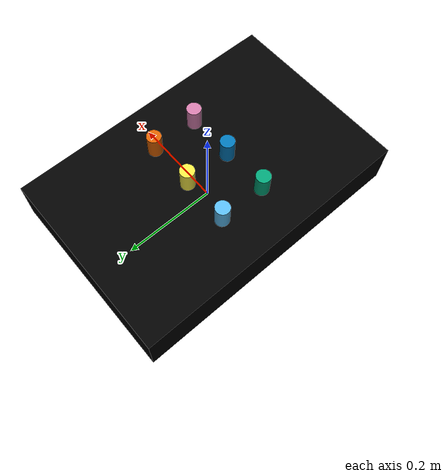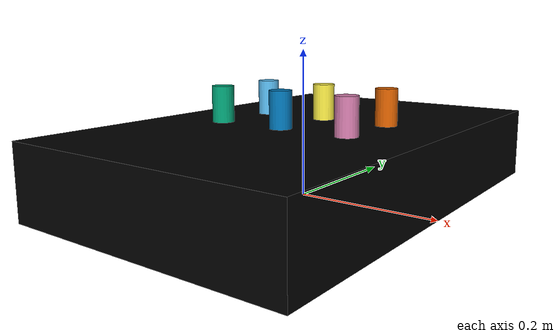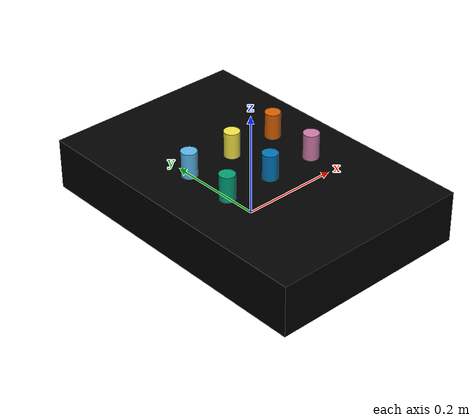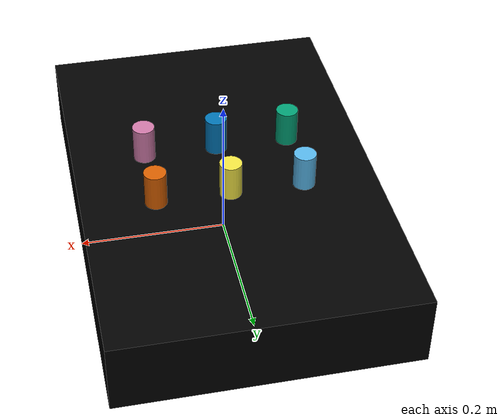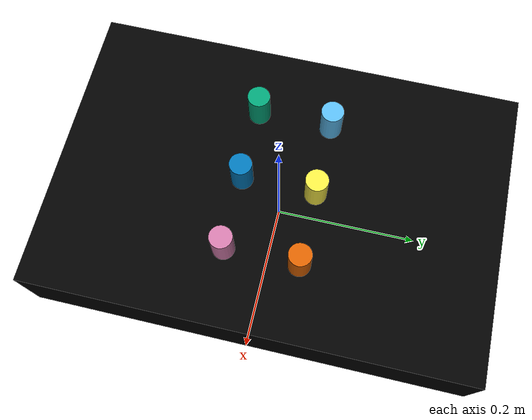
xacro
<?xml version="1.0"?>
<robot name="sparsh" xmlns:xacro="http://ros.org/wiki/xacro"
            xmlns:sensor="http://playerstage.sourceforge.net/gazebo/xmlschema/#sensor"
            xmlns:controller="http://playerstage.sourceforge.net/gazebo/xmlschema/#controller"
            xmlns:interface="http://playerstage.sourceforge.net/gazebo/xmlschema/#interface">

  <!-- INCLUDING THE PLUGINS FILE -->
  <xacro:include filename="$(find sparsh_computation)/urdf/sparsh_plugins.xacro"/>

  <!-- DEFINING GENERIC PROPERTIES THAT ARE USED IN THE XACRO FILE -->

  <!-- along x axis -->
  <xacro:property name="base_length" value="0.4"/>
  <!-- along y axis -->
  <xacro:property name="base_width" value="0.6"/>
  <!-- along z axis -->
  <xacro:property name="base_height" value="0.1"/>
  <!-- base mass -->
  <xacro:property name="base_mass" value="30"/>

  <!-- along z axis -->
  <xacro:property name="column_height" value="0.05"/>
  <xacro:property name="column_dia" value="0.03"/>
  <xacro:property name="column_mass" value="0.5"/>

  <!-- joint properties -->
  <xacro:property name="spacing_x" value="0.1"/>
  <xacro:property name="spacing_y" value="0.05"/>
  <xacro:property name="upper_limit" value="0.1"/>
  <xacro:property name="vel" value="30"/>

  <!-- COLOURS FOR MATERIAL -->
  <material name="white">
    <color rgba="1 1 1 1"/>
  </material>

  <material name="black">
    <color rgba ="0 0 0 1"/>
  </material>

  <material name="green">
    <color rgba="0 1 0 1"/>
  </material>

  <!-- MACROS FOR INERTIAL PROPERTIES -->
  <xacro:macro name="base_inertial">
    <inertial>
      <mass value="${base_mass}" />
      <origin xyz="0 0 ${base_height/2}" rpy="0 0 0"/>
      <inertia ixx="${(1/12)*base_mass*((base_width*base_width)+(base_height*base_height))}"
        ixy="0.0"
        ixz="0.0"
        iyy="${(1/12)*base_mass*((base_height*base_height)+(base_length*base_length))}"
        iyz="0.0"
        izz="${(1/12)*base_mass*((base_width*base_width)+(base_length*base_length))}" />
    </inertial>
  </xacro:macro>

  <xacro:macro name="column_inertial">
    <inertial>
      <mass value="${column_mass}"/>
      <inertia ixx="${(1/12)*column_mass*(3*column_dia*column_dia/4 + column_height*column_height)}"
        ixy="0"
        ixz="0"
        iyy="${(1/12)*column_mass*(3*column_dia*column_dia/4 + column_height*column_height)}"
        iyz="0"
        izz="${0.5*column_mass*column_dia*column_dia/4}"/>
    </inertial>
  </xacro:macro>

  <!-- BASE LINK -->
  <link name="base_link">
    <visual>
      <origin xyz="0 0 ${base_height/2}" rpy="0 0 0"/>
      <geometry>
        <box size="${base_length} ${base_width} ${base_height}"/>
      </geometry>
      <material name="black"/>
    </visual>
    <collision>
      <origin xyz="0 0 ${base_height/2}" rpy="0 0 0"/>
      <geometry>
        <box size="${base_length} ${base_width} ${base_height}"/>
      </geometry>
    </collision>
    <xacro:base_inertial/>
  </link>

  <!-- TOP RIGHT COLUMN LINK-->
  <link name="column_link_top_right">
    <visual>
      <origin xyz="0 0 ${column_height/2}" rpy="0 0 0"/>
      <geometry>
        <cylinder radius="${column_dia/2}" length="${column_height}"/>
      </geometry>
    </visual>
    <collision>
      <origin xyz="0 0 ${column_height/2}" rpy="0 0 0"/>
      <geometry>
        <cylinder radius="${column_dia/2}" length="${column_height}"/>
      </geometry>
    </collision>
    <xacro:column_inertial/>
  </link>

  <!-- TOP LEFT COLUMN LINK-->
  <link name="column_link_top_left">
    <visual>
      <origin xyz="0 0 ${column_height/2}" rpy="0 0 0"/>
      <geometry>
        <cylinder radius="${column_dia/2}" length="${column_height}"/>
      </geometry>
    </visual>
    <collision>
      <origin xyz="0 0 ${column_height/2}" rpy="0 0 0"/>
      <geometry>
        <cylinder radius="${column_dia/2}" length="${column_height}"/>
      </geometry>
    </collision>
    <xacro:column_inertial/>
  </link>

  <!-- MIDDLE RIGHT COLUMN LINK-->
  <link name="column_link_middle_right">
    <visual>
      <origin xyz="0 0 ${column_height/2}" rpy="0 0 0"/>
      <geometry>
        <cylinder radius="${column_dia/2}" length="${column_height}"/>
      </geometry>
    </visual>
    <collision>
      <origin xyz="0 0 ${column_height/2}" rpy="0 0 0"/>
      <geometry>
        <cylinder radius="${column_dia/2}" length="${column_height}"/>
      </geometry>
    </collision>
    <xacro:column_inertial/>
  </link>

  <!-- MIDDLE LEFT COLUMN LINK-->
  <link name="column_link_middle_left">
    <visual>
      <origin xyz="0 0 ${column_height/2}" rpy="0 0 0"/>
      <geometry>
        <cylinder radius="${column_dia/2}" length="${column_height}"/>
      </geometry>
    </visual>
    <collision>
      <origin xyz="0 0 ${column_height/2}" rpy="0 0 0"/>
      <geometry>
        <cylinder radius="${column_dia/2}" length="${column_height}"/>
      </geometry>
    </collision>
    <xacro:column_inertial/>
  </link>

  <!-- BOTTOM RIGHT COLUMN LINK-->
  <link name="column_link_bottom_right">
    <visual>
      <origin xyz="0 0 ${column_height/2}" rpy="0 0 0"/>
      <geometry>
        <cylinder radius="${column_dia/2}" length="${column_height}"/>
      </geometry>
    </visual>
    <collision>
      <origin xyz="0 0 ${column_height/2}" rpy="0 0 0"/>
      <geometry>
        <cylinder radius="${column_dia/2}" length="${column_height}"/>
      </geometry>
    </collision>
    <xacro:column_inertial/>
  </link>

  <!-- BOTTOM LEFT COLUMN LINK-->
  <link name="column_link_bottom_left">
    <visual>
      <origin xyz="0 0 ${column_height/2}" rpy="0 0 0"/>
      <geometry>
        <cylinder radius="${column_dia/2}" length="${column_height}"/>
      </geometry>
    </visual>
    <collision>
      <origin xyz="0 0 ${column_height/2}" rpy="0 0 0"/>
      <geometry>
        <cylinder radius="${column_dia/2}" length="${column_height}"/>
      </geometry>
    </collision>
    <xacro:column_inertial/>
  </link>

  <!-- JOINTS -->
  <joint name="top_right_column_to_base_link" type="prismatic">
      <origin xyz="-${spacing_x} ${spacing_y} ${base_height}" rpy="0 0 0"/>
      <limit upper="${upper_limit}" lower="0" effort="500" velocity="${vel}"/>
      <axis xyz="0 0 1" rpy="0 0 0"/>
      <parent link="base_link"/>
      <child link="column_link_top_right"/>
  </joint>

  <joint name="top_left_column_to_base_link" type="prismatic">
      <origin xyz="-${spacing_x} -${spacing_y} ${base_height}" rpy="0 0 0"/>
      <limit upper="${upper_limit}" lower="0" effort="500" velocity="${vel}"/>
      <axis xyz="0 0 1" rpy="0 0 0"/>
      <parent link="base_link"/>
      <child link="column_link_top_left"/>
  </joint>

  <joint name="middle_right_column_to_base_link" type="prismatic">
      <origin xyz="0 ${spacing_y} ${base_height}" rpy="0 0 0"/>
      <limit upper="${upper_limit}" lower="0" effort="500" velocity="${vel}"/>
      <axis xyz="0 0 1" rpy="0 0 0"/>
      <parent link="base_link"/>
      <child link="column_link_middle_right"/>
  </joint>

  <joint name="middle_left_column_to_base_link" type="prismatic">
      <origin xyz="0 -${spacing_y} ${base_height}" rpy="0 0 0"/>
      <limit upper="${upper_limit}" lower="0" effort="500" velocity="${vel}"/>
      <axis xyz="0 0 1" rpy="0 0 0"/>
      <parent link="base_link"/>
      <child link="column_link_middle_left"/>
  </joint>

  <joint name="bottom_right_column_to_base_link" type="prismatic">
      <origin xyz="${spacing_x} ${spacing_y} ${base_height}" rpy="0 0 0"/>
      <limit upper="${upper_limit}" lower="0" effort="500" velocity="${vel}"/>
      <axis xyz="0 0 1" rpy="0 0 0"/>
      <parent link="base_link"/>
      <child link="column_link_bottom_right"/>
  </joint>

  <joint name="bottom_left_column_to_base_link" type="prismatic">
      <origin xyz="${spacing_x} -${spacing_y} ${base_height}" rpy="0 0 0"/>
      <limit upper="${upper_limit}" lower="0" effort="500" velocity="${vel}"/>
      <axis xyz="0 0 1" rpy="0 0 0"/>
      <parent link="base_link"/>
      <child link="column_link_bottom_left"/>
  </joint>

</robot>
